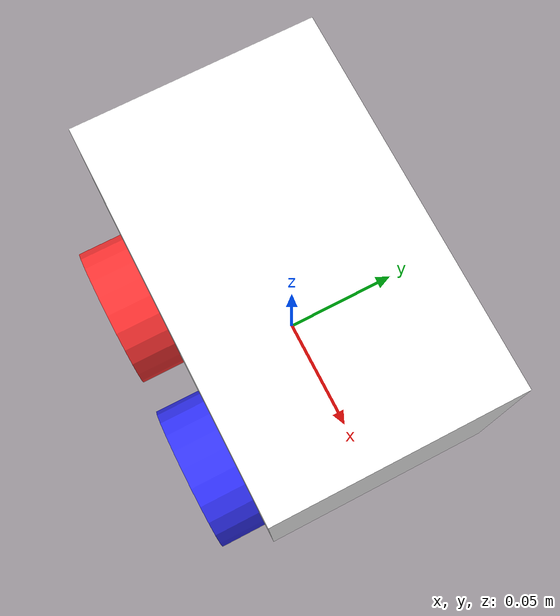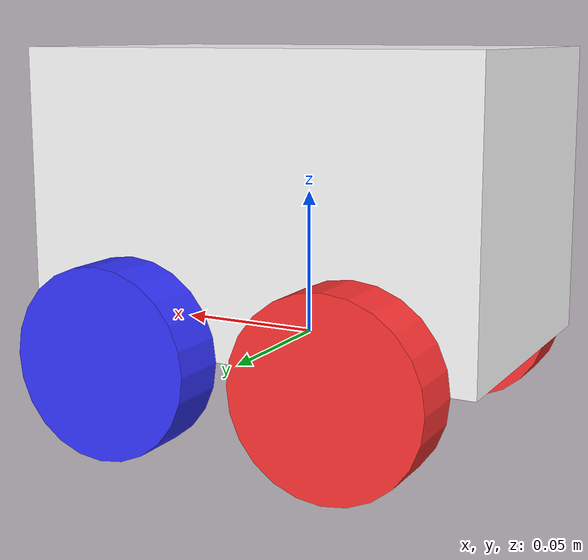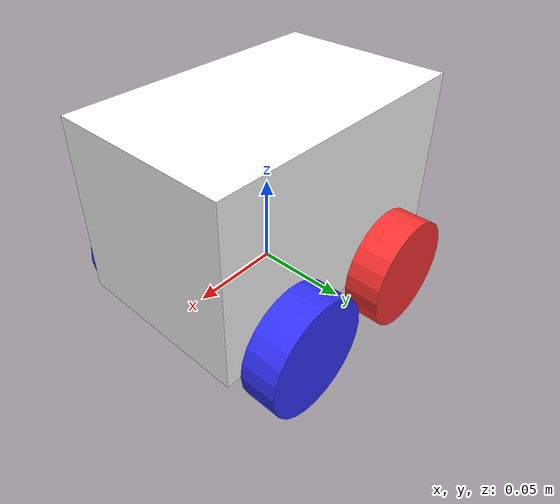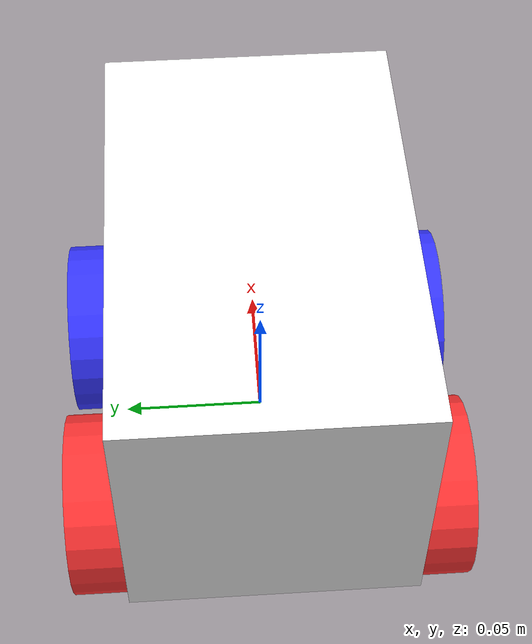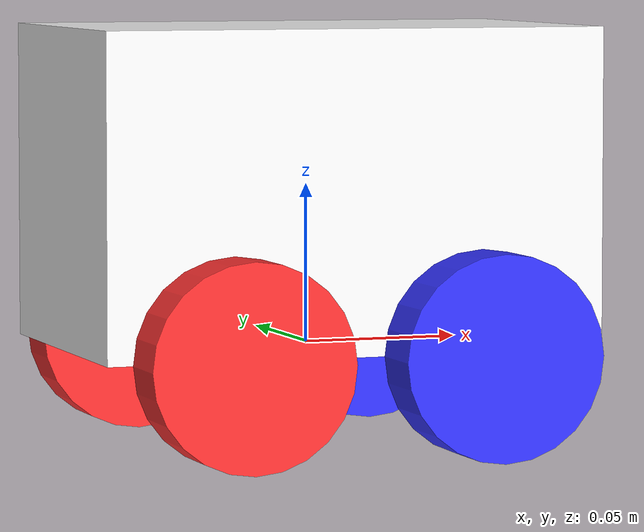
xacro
<?xml version="1.0"?>
<robot xmlns:xacro="http://www.ros.org/wiki/xacro">

    <xacro:include filename="inertial_macros.xacro"/>

    <material name="white">
        <color rgba="1 1 1 1"/>
    </material>

    <material name="orange">
        <color rgba="1 0.3 0.1 1"/>
    </material>

    <material name="blue">
        <color rgba="0.2 0.2 1 1"/>
    </material>

    <material name="black">
        <color rgba="0 0 0 1"/>
    </material>

    <material name="red">
        <color rgba="1 0.2 0.2 1"/>
    </material>

    <!-- BASE LINK-->

    <link name="base_link">
        <origin xyz="0 0 0.32"/>
    </link>

    <!-- CHASSIS LINK-->

    <joint name="chassis_joint" type="fixed">
        <parent link="base_link"/>
        <child link="chassis"/>
        <origin xyz="0 0 0.05"/>
    </joint>

    <link name="chassis">
        <visual>
            <orign xyz="0.08 0 -0.05"/>
            <geometry>
                <box size="0.16 0.1 0.10"/>
            </geometry>
            <material name="white"/>
        </visual>
        <collision>
            <orign xyz="0.08 0 -0.05"/>
            <geometry>
                <box size="0.16 0.1 0.1"/>
            </geometry>
        </collision>
        <xacro:inertial_box mass="0.5" x="0.16" y="0.1" z="0.1">
            <origin xyz="0.08 0 -0.05" rpy="0 0 0"/>
        </xacro:inertial_box>
    </link>

    <gazebo reference="chassis">
        <material>Gazebo/White</material>
    </gazebo>

    <!-- FRONT LEFT WHEEL LINK -->

    <joint name="front_left_wheel_joint" type="continuous">
        <parent link="base_link"/>
        <child link="front_left_wheel"/>
        <origin xyz="0.04 0.06 0" rpy="-${pi/2} 0 0"/>
        <axis xyz="0 0 1"/>
    </joint>

    <link name="front_left_wheel">
        <visual>
            <geometry>
                <cylinder radius="0.032" length="0.02"/>
            </geometry>
            <material name="blue"/>
        </visual>
        <collision>
            <geometry>
                <cylinder radius="0.032" length="0.02"/>
            </geometry>
        </collision>
        <xacro:inertial_cylinder mass="0.1" radius="0.032" length="0.02">
            <origin xyz="0 0 0" rpy="0 0 0"/>
        </xacro:inertial_cylinder>
    </link>

    <gazebo reference="front_left_wheel">
        <material>Gazebo/Blue</material>
    </gazebo>

    <!-- FRONT RIGHT WHEEL LINK -->

    <joint name="front_right_wheel_joint" type="continuous">
        <parent link="base_link"/>
        <child link="front_right_wheel"/>
        <origin xyz="0.04 -0.06 0" rpy="${pi/2} 0 0"/>
        <axis xyz="0 0 -1"/>
    </joint>

    <link name="front_right_wheel">
        <visual>
            <geometry>
                <cylinder radius="0.032" length="0.02"/>
            </geometry>
            <material name="blue"/>
        </visual>
        <collision>
            <geometry>
                <cylinder radius="0.032" length="0.02"/>
            </geometry>
        </collision>
        <xacro:inertial_cylinder mass="0.1" radius="0.032" length="0.02">
            <origin xyz="0 0 0" rpy="0 0 0"/>
        </xacro:inertial_cylinder>
    </link>

    <gazebo reference="front_right_wheel">
        <material>Gazebo/Blue</material>
    </gazebo>

    <!-- REAR LEFT WHEEL LINK -->

    <joint name="rear_left_wheel_joint" type="continuous">
        <parent link="base_link"/>
        <child link="rear_left_wheel"/>
        <origin xyz="-0.04 0.06 0" rpy="-${pi/2} 0 0"/>
        <axis xyz="0 0 1"/>
    </joint>

    <link name="rear_left_wheel">
        <visual>
            <geometry>
                <cylinder radius="0.032" length="0.02"/>
            </geometry>
            <material name="red"/>
        </visual>
        <collision>
            <geometry>
                <cylinder radius="0.032" length="0.02"/>
            </geometry>
        </collision>
        <xacro:inertial_cylinder mass="0.1" radius="0.032" length="0.02">
            <origin xyz="0 0 0" rpy="0 0 0"/>
        </xacro:inertial_cylinder>
    </link>

    <gazebo reference="rear_left_wheel">
        <material>Gazebo/Red</material>
    </gazebo>

    <!-- REAR RIGHT WHEEL LINK -->

    <joint name="rear_right_wheel_joint" type="continuous">
        <parent link="base_link"/>
        <child link="rear_right_wheel"/>
        <origin xyz="-0.04 -0.06 0" rpy="${pi/2} 0 0"/>
        <axis xyz="0 0 -1"/>
    </joint>

    <link name="rear_right_wheel">
        <visual>
            <geometry>
                <cylinder radius="0.032" length="0.02"/>
            </geometry>
            <material name="red"/>
        </visual>
        <collision>
            <geometry>
                <cylinder radius="0.032" length="0.02"/>
            </geometry>
        </collision>
        <xacro:inertial_cylinder mass="0.1" radius="0.032" length="0.02">
            <origin xyz="0 0 0" rpy="0 0 0"/>
        </xacro:inertial_cylinder>
    </link>

    <gazebo reference="rear_right_wheel">
        <material>Gazebo/Red</material>
    </gazebo>

</robot>
